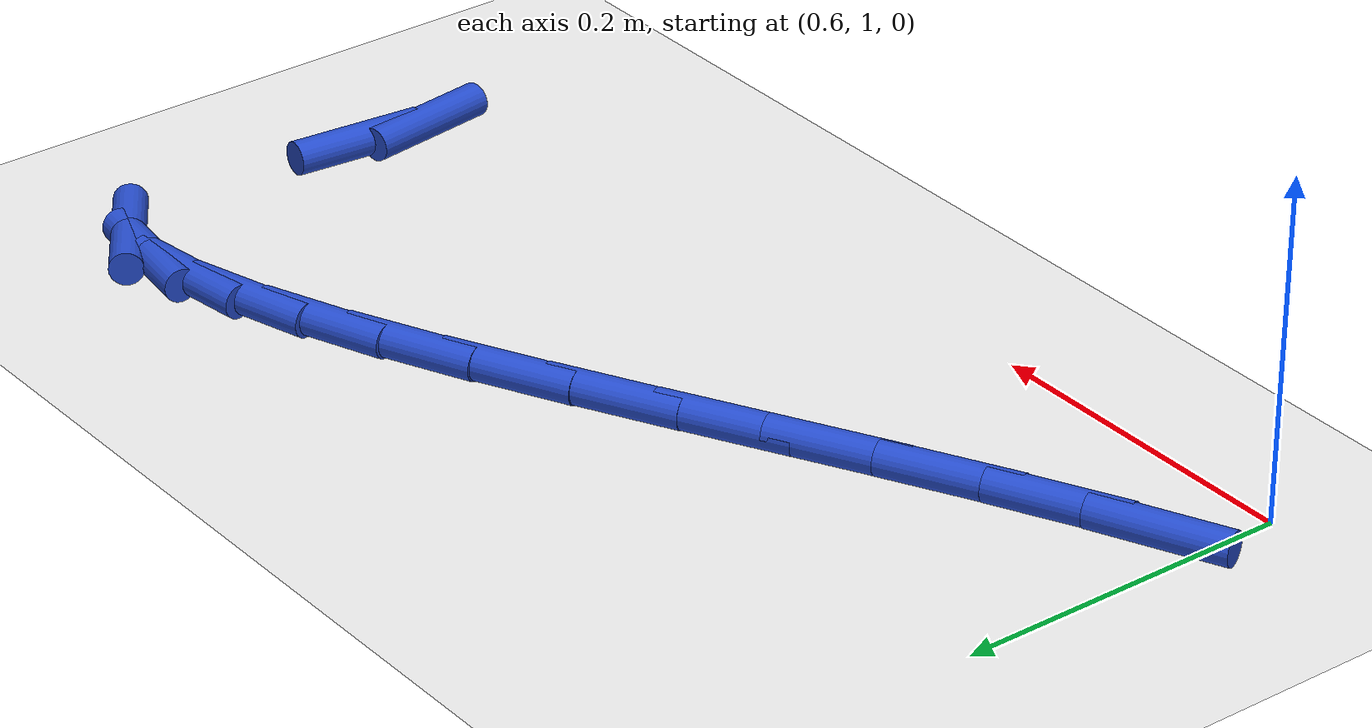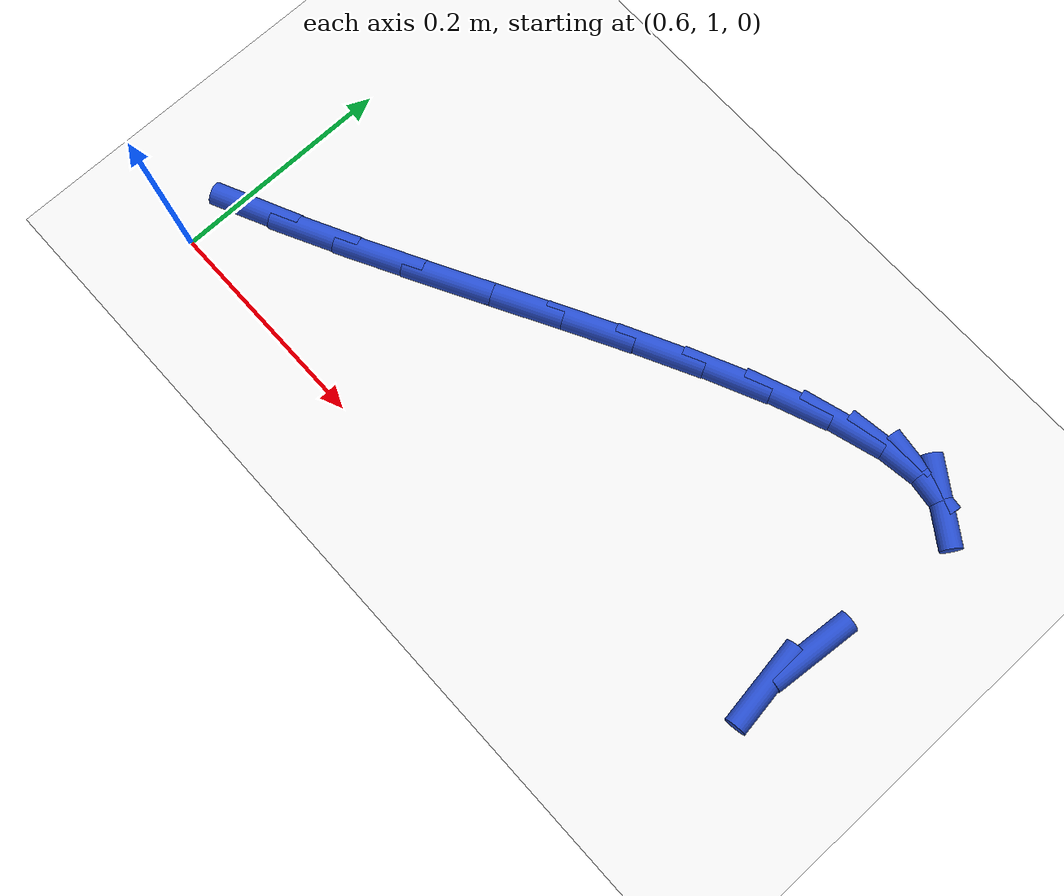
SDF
<sdf version="1.6">
 <world name="default">
  <model name="ground_plane">
   <static>1</static>
   <link name="link">
    <collision name="collision">
     <geometry><plane><normal>0 0 1</normal><size>100 100</size></plane></geometry>
     <surface><friction><ode><mu>100</mu><mu2>50</mu2></ode></friction></surface>
    </collision>
    <visual name="visual">
     <cast_shadows>0</cast_shadows>
     <geometry><plane><normal>0 0 1</normal><size>100 100</size></plane></geometry>
     <material>
      <script><uri>file://media/materials/scripts/gazebo.material</uri><name>Gazebo/WhiteGlow</name></script>
     </material>
    </visual>
   </link>
  </model>
  <model name="line">
   <link name="link_29">
    <pose>0.6185240442582641 1.0590990872372108 0.01 0 1.57 0.43199273822149525</pose>
    <collision name="collision">
     <geometry><cylinder><radius>0.01</radius><length>0.08</length></cylinder></geometry>
    </collision>
    <visual name="visual">
     <material>
      <script><name>Gazebo/Blue</name><uri>file://media/materials/scripts/gazebo.material</uri></script>
     </material>
     <geometry><cylinder><radius>0.01</radius><length>0.08</length></cylinder></geometry>
    </visual>
   </link>
   <link name="link_30">
    <pose>0.6691456111966975 1.0824374069320764 0.01 0 1.57 0.46394335242594864</pose>
    <collision name="collision">
     <geometry><cylinder><radius>0.01</radius><length>0.08</length></cylinder></geometry>
    </collision>
    <visual name="visual">
     <material>
      <script><name>Gazebo/Blue</name><uri>file://media/materials/scripts/gazebo.material</uri></script>
     </material>
     <geometry><cylinder><radius>0.01</radius><length>0.08</length></cylinder></geometry>
    </visual>
   </link>
   <link name="link_31">
    <pose>0.7225319325170912 1.1091503063285533 0.01 0 1.57 0.4828885834467119</pose>
    <collision name="collision">
     <geometry><cylinder><radius>0.01</radius><length>0.08</length></cylinder></geometry>
    </collision>
    <visual name="visual">
     <material>
      <script><name>Gazebo/Blue</name><uri>file://media/materials/scripts/gazebo.material</uri></script>
     </material>
     <geometry><cylinder><radius>0.01</radius><length>0.08</length></cylinder></geometry>
    </visual>
   </link>
   <link name="link_32">
    <pose>0.7777008273626576 1.1380746890606162 0.01 0 1.57 0.4916595472219491</pose>
    <collision name="collision">
     <geometry><cylinder><radius>0.01</radius><length>0.08</length></cylinder></geometry>
    </collision>
    <visual name="visual">
     <material>
      <script><name>Gazebo/Blue</name><uri>file://media/materials/scripts/gazebo.material</uri></script>
     </material>
     <geometry><cylinder><radius>0.01</radius><length>0.08</length></cylinder></geometry>
    </visual>
   </link>
   <link name="link_33">
    <pose>0.833670114876608 1.1680474587622391 0.01 0 1.57 0.491417717148591</pose>
    <collision name="collision">
     <geometry><cylinder><radius>0.01</radius><length>0.08</length></cylinder></geometry>
    </collision>
    <visual name="visual">
     <material>
      <script><name>Gazebo/Blue</name><uri>file://media/materials/scripts/gazebo.material</uri></script>
     </material>
     <geometry><cylinder><radius>0.01</radius><length>0.08</length></cylinder></geometry>
    </visual>
   </link>
   <link name="link_34">
    <pose>0.889457614202154 1.1979055190673955 0.01 0 1.57 0.48205246829047277</pose>
    <collision name="collision">
     <geometry><cylinder><radius>0.01</radius><length>0.08</length></cylinder></geometry>
    </collision>
    <visual name="visual">
     <material>
      <script><name>Gazebo/Blue</name><uri>file://media/materials/scripts/gazebo.material</uri></script>
     </material>
     <geometry><cylinder><radius>0.01</radius><length>0.08</length></cylinder></geometry>
    </visual>
   </link>
   <link name="link_35">
    <pose>0.9440811444825071 1.2264857736100603 0.01 0 1.57 0.4621320916891008</pose>
    <collision name="collision">
     <geometry><cylinder><radius>0.01</radius><length>0.08</length></cylinder></geometry>
    </collision>
    <visual name="visual">
     <material>
      <script><name>Gazebo/Blue</name><uri>file://media/materials/scripts/gazebo.material</uri></script>
     </material>
     <geometry><cylinder><radius>0.01</radius><length>0.08</length></cylinder></geometry>
    </visual>
   </link>
   <link name="link_36">
    <pose>0.9965585248608791 1.252625126024207 0.01 0 1.57 0.4283721390348129</pose>
    <collision name="collision">
     <geometry><cylinder><radius>0.01</radius><length>0.08</length></cylinder></geometry>
    </collision>
    <visual name="visual">
     <material>
      <script><name>Gazebo/Blue</name><uri>file://media/materials/scripts/gazebo.material</uri></script>
     </material>
     <geometry><cylinder><radius>0.01</radius><length>0.08</length></cylinder></geometry>
    </visual>
   </link>
   <link name="link_37">
    <pose>1.045907574480482 1.2751604799438092 0.01 0 1.57 0.3742565610275269</pose>
    <collision name="collision">
     <geometry><cylinder><radius>0.01</radius><length>0.08</length></cylinder></geometry>
    </collision>
    <visual name="visual">
     <material>
      <script><name>Gazebo/Blue</name><uri>file://media/materials/scripts/gazebo.material</uri></script>
     </material>
     <geometry><cylinder><radius>0.01</radius><length>0.08</length></cylinder></geometry>
    </visual>
   </link>
   <link name="link_38">
    <pose>1.0911461124845265 1.292928739002842 0.01 0 1.57 0.28674976524263324</pose>
    <collision name="collision">
     <geometry><cylinder><radius>0.01</radius><length>0.08</length></cylinder></geometry>
    </collision>
    <visual name="visual">
     <material>
      <script><name>Gazebo/Blue</name><uri>file://media/materials/scripts/gazebo.material</uri></script>
     </material>
     <geometry><cylinder><radius>0.01</radius><length>0.08</length></cylinder></geometry>
    </visual>
   </link>
   <link name="link_39">
    <pose>1.1312919580162253 1.304766806835279 0.01 0 1.57 0.13837172414238297</pose>
    <collision name="collision">
     <geometry><cylinder><radius>0.01</radius><length>0.08</length></cylinder></geometry>
    </collision>
    <visual name="visual">
     <material>
      <script><name>Gazebo/Blue</name><uri>file://media/materials/scripts/gazebo.material</uri></script>
     </material>
     <geometry><cylinder><radius>0.01</radius><length>0.08</length></cylinder></geometry>
    </visual>
   </link>
   <link name="link_40">
    <pose>1.1653629302187891 1.3095115870750935 0.01 0 1.57 -0.1292675187864802</pose>
    <collision name="collision">
     <geometry><cylinder><radius>0.01</radius><length>0.08</length></cylinder></geometry>
    </collision>
    <visual name="visual">
     <material>
      <script><name>Gazebo/Blue</name><uri>file://media/materials/scripts/gazebo.material</uri></script>
     </material>
     <geometry><cylinder><radius>0.01</radius><length>0.08</length></cylinder></geometry>
    </visual>
   </link>
   <link name="link_41">
    <pose>1.19237684823543 1.3059999833562606 0.01 0 1.57 -0.5981958094452218</pose>
    <collision name="collision">
     <geometry><cylinder><radius>0.01</radius><length>0.08</length></cylinder></geometry>
    </collision>
    <visual name="visual">
     <material>
      <script><name>Gazebo/Blue</name><uri>file://media/materials/scripts/gazebo.material</uri></script>
     </material>
     <geometry><cylinder><radius>0.01</radius><length>0.08</length></cylinder></geometry>
    </visual>
   </link>
   <link name="link_46">
    <pose>1.206280561110654 1.1431191255912556 0.01 0 1.57 1.480575264627823</pose>
    <collision name="collision">
     <geometry><cylinder><radius>0.01</radius><length>0.08</length></cylinder></geometry>
    </collision>
    <visual name="visual">
     <material>
      <script><name>Gazebo/Blue</name><uri>file://media/materials/scripts/gazebo.material</uri></script>
     </material>
     <geometry><cylinder><radius>0.01</radius><length>0.08</length></cylinder></geometry>
    </visual>
   </link>
   <link name="link_47">
    <pose>1.2021781272937655 1.0977716576952683 0.01 0 1.57 -1.428299479856965</pose>
    <collision name="collision">
     <geometry><cylinder><radius>0.01</radius><length>0.08</length></cylinder></geometry>
    </collision>
    <visual name="visual">
     <material>
      <script><name>Gazebo/Blue</name><uri>file://media/materials/scripts/gazebo.material</uri></script>
     </material>
     <geometry><cylinder><radius>0.01</radius><length>0.08</length></cylinder></geometry>
    </visual>
   </link>
  </model>
 </world>
</sdf>
